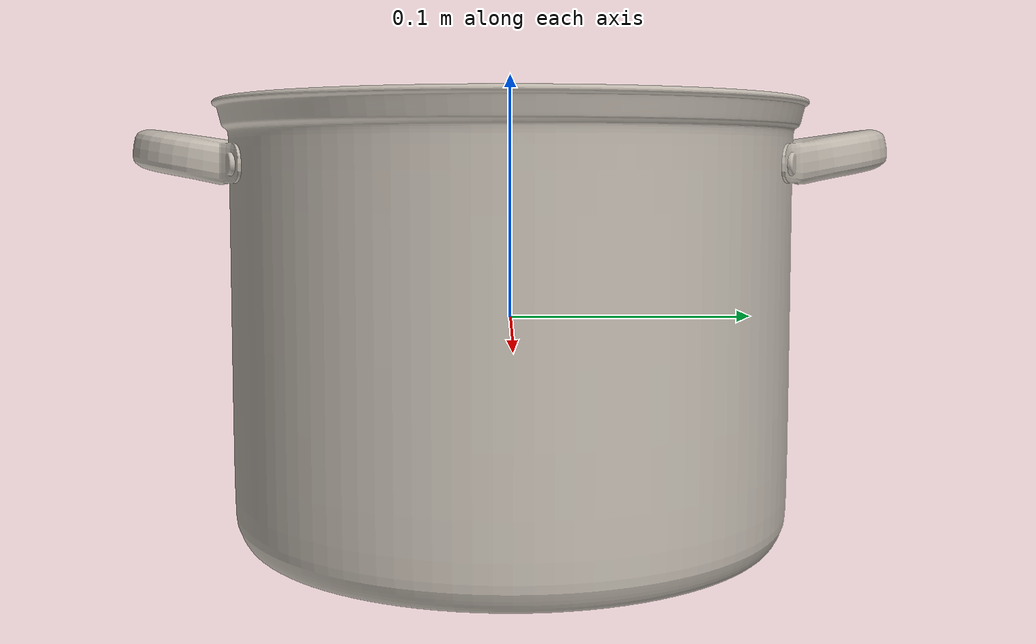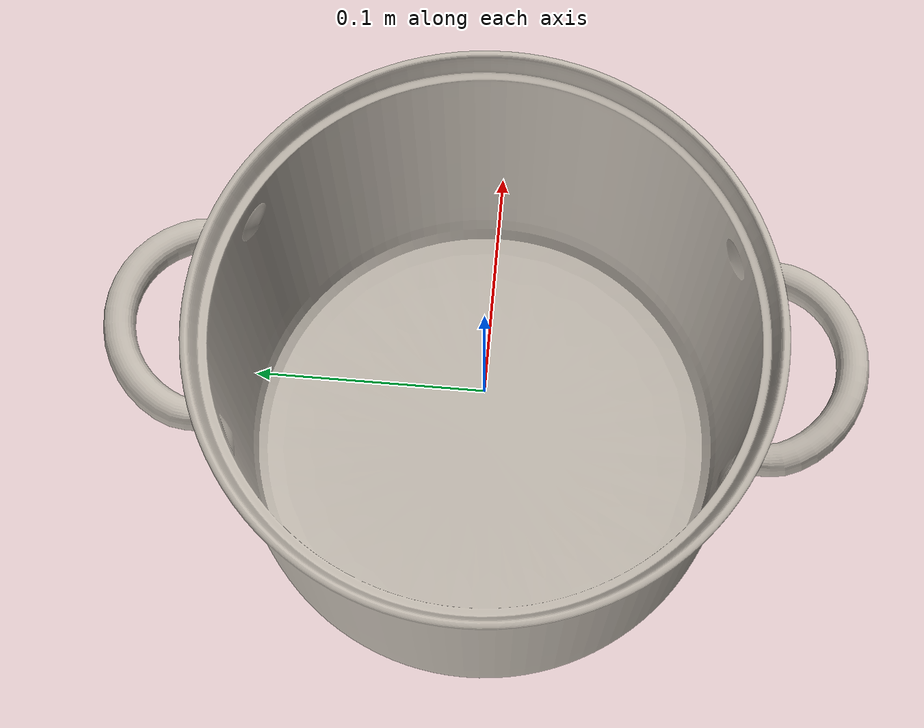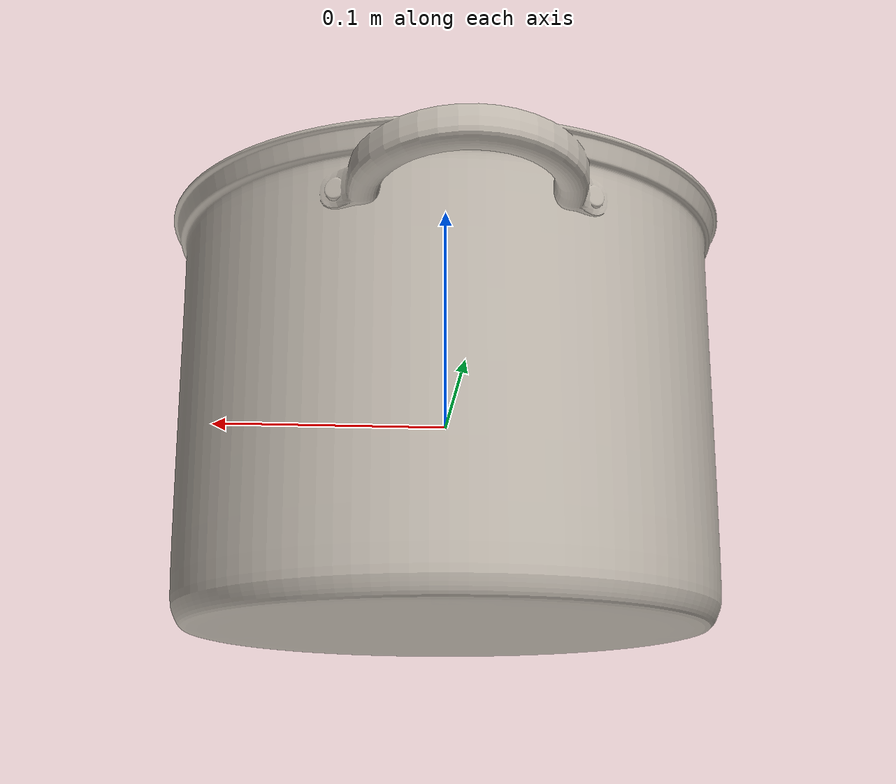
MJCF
<mujoco model="pot_8qt">
  <asset>
    <mesh file="8_quart_pot.msh" name="pot_8qt_mesh"/>
    <texture type="2d" file="8_quart_pot_color.png" name="tex-pot-8qt"/>
    <material name="pot_8qt_mat" texture="tex-pot-8qt" specular="0.75" shininess="0.4"/>
  </asset>
  <worldbody>
    <body>
      <body name="object">
        <geom name="visual" mesh="pot_8qt_mesh" type="mesh" material="pot_8qt_mat"
              quat="0.7071068 0 0 0.7071068"
              contype="0" conaffinity="0" group="1" mass="1e-8"/>
        <geom name="body_col" type="cylinder" size="0.115 0.0644" pos="0 0 -0.0244"
              group="0" rgba="0.5 0.5 0.5 0" mass="0.9"
              solimp="0.998 0.998 0.001" solref="0.001 1" friction="0.95 0.3 0.1"/>
        <geom name="handle0_bar" type="capsule" size="0.008"
              fromto="-0.02 0.1455 0.0695 0.02 0.1455 0.0695"
              group="0" rgba="0.5 0.5 0.5 0" mass="0.05"
              solimp="0.998 0.998 0.001" solref="0.001 1" friction="1.0 0.005 0.0001"/>
        <geom name="handle1_bar" type="capsule" size="0.008"
              fromto="-0.02 -0.1455 0.0695 0.02 -0.1455 0.0695"
              group="0" rgba="0.5 0.5 0.5 0" mass="0.05"
              solimp="0.998 0.998 0.001" solref="0.001 1" friction="1.0 0.005 0.0001"/>
        <site name="handle0" pos="0 0.1455 0.0695" size="0.005" rgba="0 1 0 0"/>
        <site name="handle1" pos="0 -0.1455 0.0695" size="0.005" rgba="0 0 1 0"/>
        <site name="center" pos="0 0 0" size="0.005" rgba="1 0 0 0"/>
      </body>
      <site rgba="0 0 0 0" size="0.005" pos="0 0 -0.0888" name="bottom_site"/>
      <site rgba="0 0 0 0" size="0.005" pos="0 0 0.0888" name="top_site"/>
      <site rgba="0 0 0 0" size="0.005" pos="0.1537 0 0" name="horizontal_radius_site"/>
    </body>
  </worldbody>
</mujoco>
